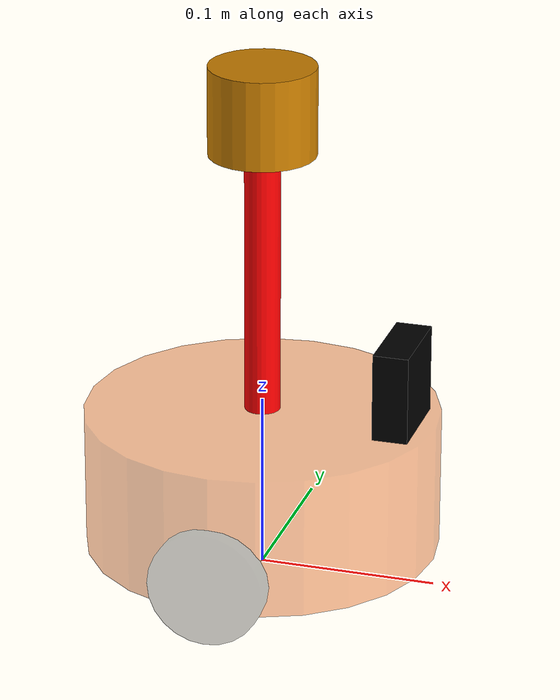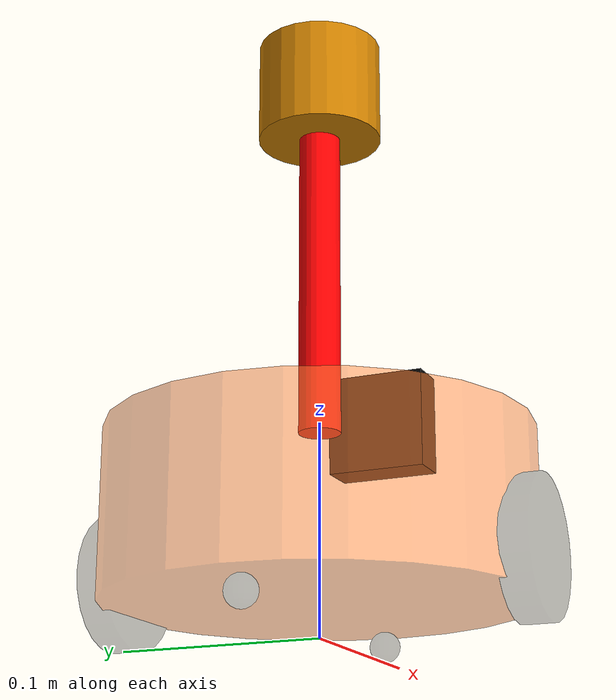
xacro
<?xml version="1.0"?>
<robot xmlns:xacro="http://www.ros.org/wiki/xacro" name="mycar">
    <xacro:include filename="$(find urdf_gazebo)/urdf/head.xacro"/>
    <xacro:include filename="$(find urdf_gazebo)/urdf/demo_car_base.xacro"/>
    <xacro:include filename="$(find urdf_gazebo)/urdf/demo_car_camera.xacro"/>
    <xacro:include filename="$(find urdf_gazebo)/urdf/demo_car_laser.xacro"/>

    <!-- 运动控制 -->
    <xacro:include filename="$(find urdf_gazebo)/urdf/gazebo/move.xacro"/>
    <!-- 雷达控制 -->
    <xacro:include filename="$(find urdf_gazebo)/urdf/gazebo/laser.xacro"/>
    <!-- 摄像头仿真 -->
    <xacro:include filename="$(find urdf_gazebo)/urdf/gazebo/camera.xacro"/>
    <!-- kinect -->
    <xacro:include filename="$(find urdf_gazebo)/urdf/gazebo/kinect.xacro"/>
</robot>

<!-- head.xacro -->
<robot
    name="base" xmlns:xacro="http://wiki.ros.org/xacro">
    <!-- Macro for inertia matrix -->
    <xacro:macro name="sphere_inertial_matrix" params="m r">
        <inertial>
            <mass value="${m}"/>
            <inertia ixx="${2*m*r*r/5}" ixy="0" ixz="0" iyy="${2*m*r*r/5}" iyz="0" izz="${2*m*r*r/5}"/>
        </inertial>
    </xacro:macro>

    <xacro:macro name="cylinder_inertial_matrix" params="m r h">
        <inertial>
            <mass value="${m}"/>
            <inertia ixx="${m*(3*r*r+h*h)/12}" ixy="0" ixz="0" iyy="${m*(3*r*r+h*h)/12}" iyz="0" izz="${m*r*r/2}"/>
        </inertial>
    </xacro:macro>

    <xacro:macro name="Box_inertial_matrix" params="m l w h">
        <inertial>
            <mass value="${m}"/>
            <inertia ixx="${m*(h*h + l*l)/12}" ixy="0" ixz="0" iyy="${m*(w*w + l*l)/12}" iyz="0" izz="${m*(w*w + h*h)/12}"/>
        </inertial>
    </xacro:macro>
</robot>

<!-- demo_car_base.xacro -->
<robot xmlns:xacro="http://www.ros.org/wiki/xacro" name="mycar">
    <xacro:property name="PI" value="3.1415926"/>
    <xacro:property name="footprint_radius" value="0.001"/>
    <xacro:property name="baselink_radius" value="0.1"/>
    <xacro:property name="baselink_length" value="0.08"/>
    <xacro:property name="baselink_mass" value="2"/>
    <xacro:property name="baselink_height" value="0.015"/>
    <xacro:property name="wheel_mass" value="0.05"/>
    <xacro:property name="small_wheel_base" value="0.01"/>

    <link name="base_footprint">
        <visual>
            <geometry>
                <sphere radius="${footprint_radius}"/>
            </geometry>
        </visual>
    </link>

    <link name="base_link">
        <visual>
            <geometry>
                <cylinder radius='${baselink_radius}' length='${baselink_length}'/>
            </geometry>

            <origin xyz="0.0 0.0 0.0" rpy="0.0 0.0 0.0"/>

            <material name="base_link_color">
                <color rgba="1 0.5 0.2 0.5"/>
            </material>
        </visual>
        <collision>
            <geometry>
                <cylinder radius='${baselink_radius}' length='${baselink_length}'/>
            </geometry>

            <origin xyz="0.0 0.0 0.0" rpy="0.0 0.0 0.0"/>

            <material name="base_link_color">
                <color rgba="1 0.5 0.2 0.5"/>
            </material>
        </collision>
        <!-- 惯性矩阵 -->
        <xacro:cylinder_inertial_matrix m="${baselink_mass}" r="${baselink_radius}" h="${baselink_length}"/>
    </link>

    <gazebo reference="base_link">
        <material>Gazebo/Yellow</material>
    </gazebo>

    <joint name="link2footprint" type="fixed">
        <origin xyz="0.0 0.0 ${baselink_height + baselink_length / 2}" rpy="0.0 0.0 0.0"/>
        <parent link="base_footprint"/>
        <child link="base_link"/>
    </joint>

    <xacro:macro name="getwheel" params="dire radius length lr">
        <link name="${dire}_wheel">
            <visual>
                <geometry>
                    <cylinder radius="${radius}" length="${length}"/>
                </geometry>
                <origin xyz="0.0 0.0 0.0" rpy="1.5708 0.0 0.0"/>
                <material name="wheel_color">
                    <color rgba="0.0 0.0 0.0 0.3"/>
                </material>

            </visual>
            <collision>
                <geometry>
                    <cylinder radius="${radius}" length="${length}"/>
                </geometry>
                <origin xyz="0.0 0.0 0.0" rpy="1.5708 0.0 0.0"/>
                <material name="wheel_color">
                    <color rgba="0.0 0.0 0.0 0.3"/>
                </material>
            </collision>
            <xacro:cylinder_inertial_matrix m="${wheel_mass}" r="${radius}" h="${length}"/>
        </link>
        <gazebo reference="${dire}_wheel">
            <material>Gazebo/Black</material>
        </gazebo>

        <joint name="${dire}2link" type="continuous">
            <origin xyz="0.0 ${lr * baselink_radius} -${baselink_height + baselink_length / 2 -radius}" rpy="0.0 0.0 0.0"/>
            <parent link="base_link"/>
            <child link="${dire}_wheel"/>
            <axis xyz="0.0 1 0.0"/>

        </joint>
    </xacro:macro>

    <xacro:macro name="autowheel" params="dire radius dis lr">
        <link name="${dire}_wheel">
            <visual>
                <geometry>
                    <sphere radius="${radius}"/>
                </geometry>
                <origin xyz="0.0 0.0 0.0" rpy="0.0 0.0 0.0"/>
                <material name="wheel_color">
                    <color rgba="0.0 0.0 0.0 0.3"/>
                </material>
            </visual>
            <collision>
                <geometry>
                    <sphere radius="${radius}"/>
                </geometry>
                <origin xyz="0.0 0.0 0.0" rpy="0.0 0.0 0.0"/>
                <material name="wheel_color">
                    <color rgba="0.0 0.0 0.0 0.3"/>
                </material>
            </collision>
            <xacro:sphere_inertial_matrix m="${small_wheel_base}" r="${radius}"/>
        </link>
        <gazebo reference="${dire}_wheel">
            <material>Gazebo/Red</material>
        </gazebo>

        <joint name="${dire}2link" type="continuous">
            <origin xyz="${lr * dis} 0 -${baselink_height + baselink_length / 2 - radius}" rpy="0.0 0.0 0.0"/>
            <parent link="base_link"/>
            <child link="${dire}_wheel"/>
            <axis xyz="0.0 1 0.0"/>
        </joint>
    </xacro:macro>

    <xacro:getwheel dire="left" radius="0.0325" length="0.015" lr="1"/>
    <xacro:getwheel dire="right" radius="0.0325" length="0.015" lr="-1"/>
    <xacro:autowheel dire="front" radius="0.0075" dis="0.08" lr="1"/>
    <xacro:autowheel dire="back" radius="0.0075" dis="0.08" lr="-1"/>

</robot>

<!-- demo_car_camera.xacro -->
<robot xmlns:xacro="http://www.ros.org/wiki/xacro" name="mycar">
    <xacro:property name="camera_x" value="0.02"/>
    <xacro:property name="camera_y" value="0.05"/>
    <xacro:property name="camera_z" value="0.05"/>
    <xacro:property name="joint_camera_x" value="0.08"/>
    <xacro:property name="joint_camera_y" value="0"/>
    <xacro:property name="joint_camera_z" value="${baselink_length / 2 + camera_z / 2}"/>
    <xacro:property name="camera_mass" value="0.01"/>

    <link name="camera">
        <visual name="camera">
            <origin xyz="0.0 0.0 0.0" rpy="0.0 0.0 0.0"/>
            <geometry>
                <box size="${camera_x} ${camera_y} ${camera_z}"/>
            </geometry>
            <material name="black">
                <color rgba="0.0 0.0 0.0 1.0"/>
            </material>
        </visual>
        <collision>
            <origin xyz="0.0 0.0 0.0" rpy="0.0 0.0 0.0"/>
            <geometry>
                <box size="${camera_x} ${camera_y} ${camera_z}"/>
            </geometry>
            <material name="black">
                <color rgba="0.0 0.0 0.0 1.0"/>
            </material>
        </collision>
        <xacro:Box_inertial_matrix m="${camera_mass}" l="${camera_x}" w="${camera_y}" h="${camera_z}" />
    </link>
    <gazebo reference="camera">
        <material>Gazebo/Blue</material>
    </gazebo>
    <joint name="camera2base" type="fixed">
        <parent link="base_link"/>
        <child link="camera"/>
        <origin xyz="${joint_camera_x} ${joint_camera_y} ${joint_camera_z}" rpy="0 0 0"/>
    </joint>

</robot>

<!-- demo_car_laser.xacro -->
<robot xmlns:xacro="http://www.ros.org/wiki/xacro" name="mycar">
    <xacro:property name="stand_radius" value="0.01"/>
    <xacro:property name="stand_length" value="0.15"/>
    <xacro:property name="laser_radius" value="0.03"/>
    <xacro:property name="laser_length" value="0.05"/>

    <xacro:property name="joint_stand_x" value="0"/>
    <xacro:property name="joint_stand_y" value="0"/>
    <xacro:property name="joint_stand_z" value="${stand_length / 2 + baselink_length / 2}"/>

    <xacro:property name="joint_laser_x" value="0"/>
    <xacro:property name="joint_laser_y" value="0"/>
    <xacro:property name="joint_laser_z" value="${stand_length / 2 + laser_length / 2}"/>

    <xacro:property name="stand_mass" value="0.1"/>
    <xacro:property name="laser_mass" value="0.15"/>

    <link name="laser_stand">
        <visual>
            <geometry>
                <cylinder radius="${stand_radius}" length="${stand_length}"/>
            </geometry>
            <material name="red">
                <color rgba="1.0 0.0 0.0 1.0"/>
            </material>
        </visual>

        <collision>
            <geometry>
                <cylinder radius="${stand_radius}" length="${stand_length}"/>
            </geometry>
            <material name="red">
                <color rgba="1.0 0.0 0.0 1.0"/>
            </material>
        </collision>
        <xacro:cylinder_inertial_matrix m="${stand_mass}" r="${stand_radius}" h="${stand_length}"/>
    </link>
    <gazebo reference="laser_stand">
            <material>Gazebo/Gray</material>
    </gazebo>
    <joint name="stand2base" type="fixed">
        <origin xyz="${joint_stand_x} ${joint_stand_y} ${joint_stand_z}" rpy="0.0 0.0 0.0"/>
        <parent link="base_link"/>
        <child link="laser_stand"/>
        <axis xyz="0.0 0.0 0.0"/>
        <limit lower="0.0" upper="0.0" effort="0.0" velocity="0.0"/>
    </joint>

    <link name="laser">
        <visual>
            <geometry>
                <cylinder radius="${laser_radius}" length="${laser_length}"/>
            </geometry>
            <material name="laser_color">
                <color rgba="0.8 0.5 0.0 1.0"/>
            </material>
        </visual>
        <collision>
            <geometry>
                <cylinder radius="${laser_radius}" length="${laser_length}"/>
            </geometry>
            <material name="laser_color">
                <color rgba="0.8 0.5 0.0 1.0"/>
            </material>
        </collision>
        <xacro:cylinder_inertial_matrix m="${laser_mass}" r="${laser_radius}" h="${laser_length}"/>
    </link>
    <gazebo reference="laser">
            <material>Gazebo/Black</material>
    </gazebo>
    <joint name="laser2stand" type="fixed">
        <origin xyz="${joint_laser_x} ${joint_laser_y} ${joint_laser_z}" rpy="0.0 0.0 0.0"/>
        <parent link="laser_stand"/>
        <child link="laser"/>
        <axis xyz="0.0 0.0 0.0"/>
        <limit lower="0.0" upper="0.0" effort="0.0" velocity="0.0"/>
    </joint>

</robot>
